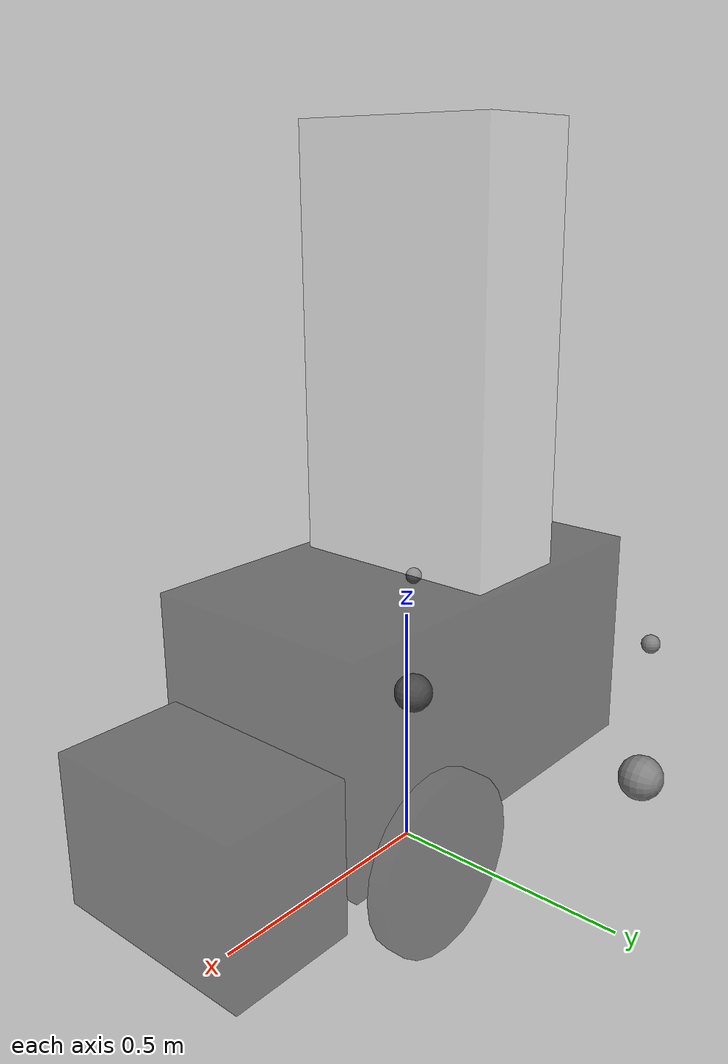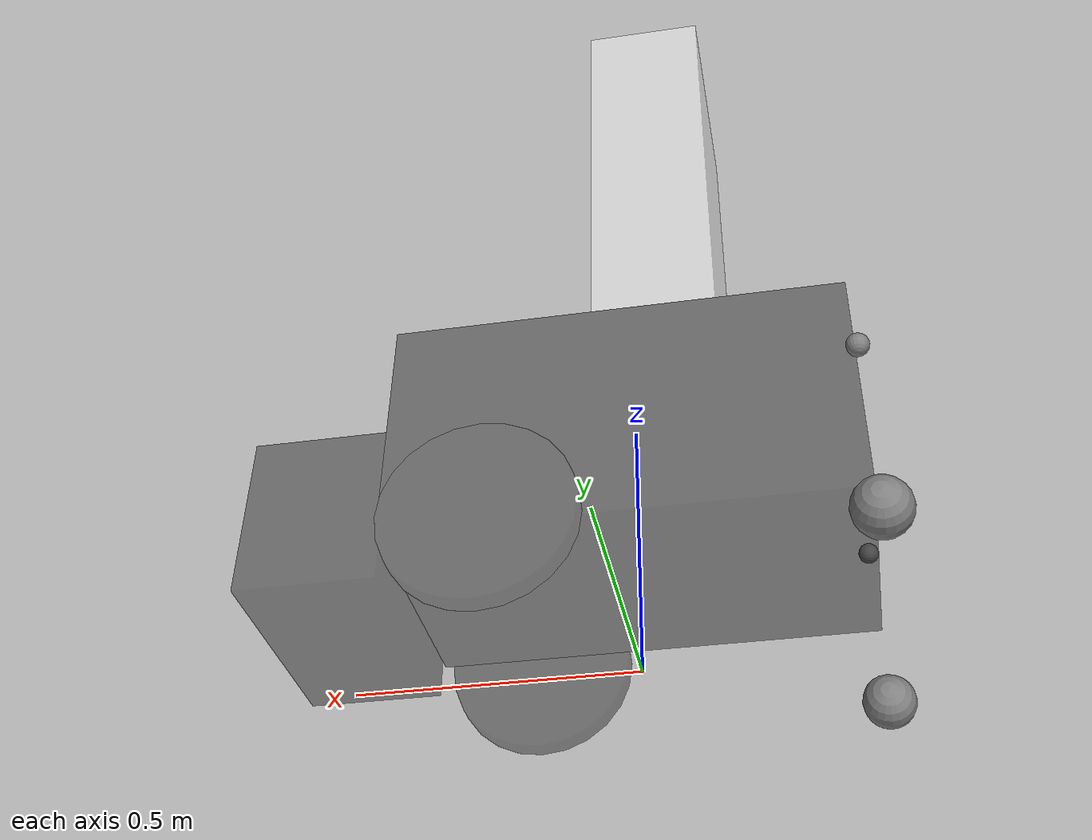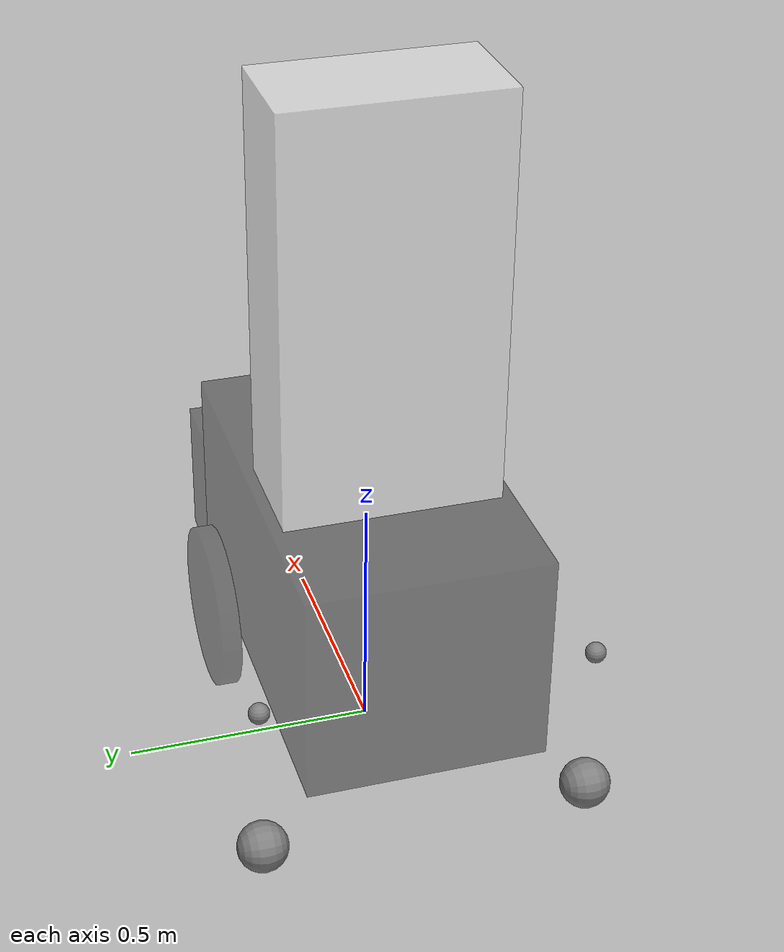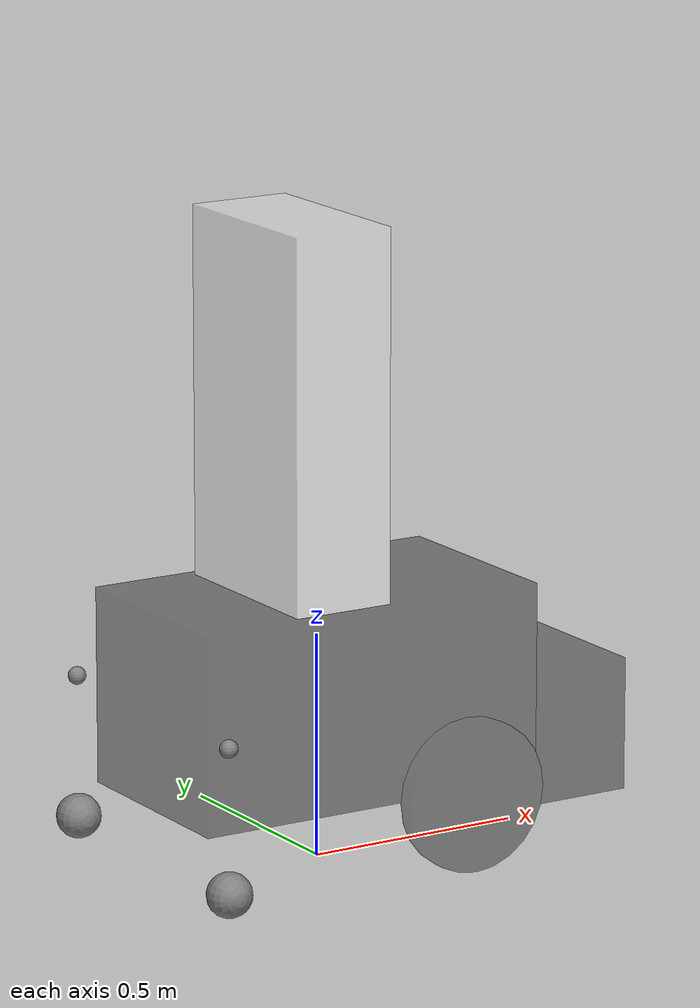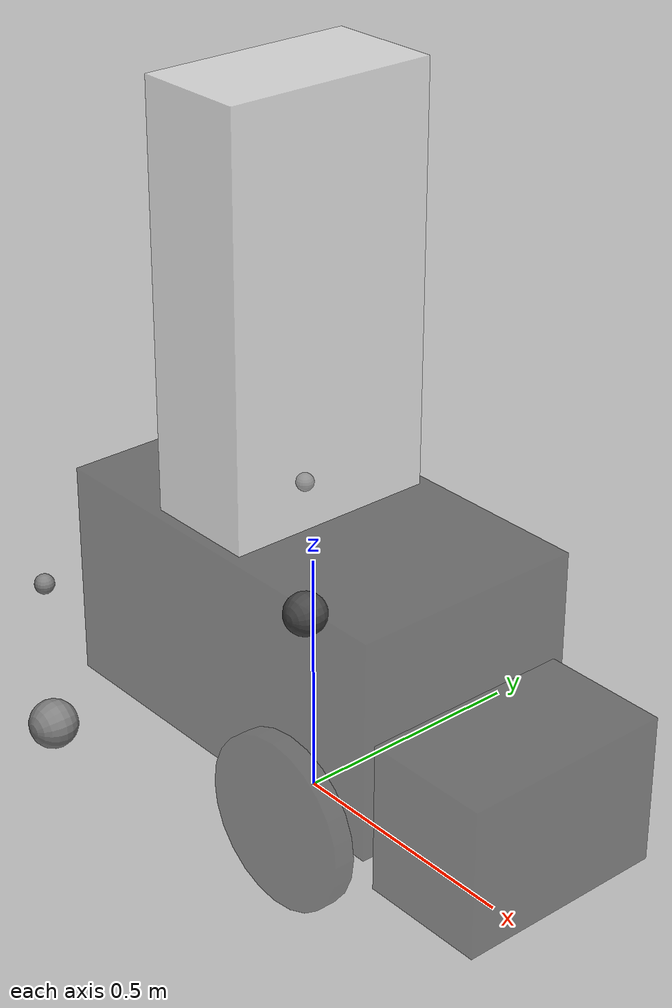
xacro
<?xml version="1.0"?>

<robot xmlns:xacro="http://www.ros.org/wiki/xacro"
    xmlns:sensor="http://playerstage.sourceforge.net/gazebo/xmlschema/#sensor"
    xmlns:controller="http://playerstage.sourceforge.net/gazebo/xmlschema/#controller"
    xmlns:interface="http://playerstage.sourceforge.net/gazebo/xmlschema/#interface"
    name="wheelchair_iaslab">

    <xacro:arg name="prefix" default="wcias_"/>

    <xacro:include filename="$(find wheelchair_iaslab_description)/urdf/wheelchair_iaslab.gazebo"/>

    <xacro:property name="M_PI" value="3.1415926535897931"/>

    <!-- Base Properties: width = y axis, length = x axis, z = height axis -->
   <!--From right wheel to left wheel-->
    <!--From front wheel to back wheel-->
  <!--From lower base to upper base of chair-->

     <xacro:property name="base_width" value="0.475" /> <!--From the centre of the right wheel to the centre of the left wheel-->
     <xacro:property name="base_length" value="0.8275"/> <!-- From the centre of small wheel to the main wheel (included the diameter)-->
     <xacro:property name="base_height" value="0.44" /> <!-- From the ground to before pillow-->
     <xacro:property name="base_mass" value="10.0" /> <!--in Kg-->

    <!-- Chair back properties -->
    <xacro:property name="chair_back_width" value="0.43" />
    <xacro:property name="chair_back_length" value="0.23" />
    <xacro:property name="chair_back_height" value="0.82" />
    <xacro:property name="chair_back_mass" value="1.0" />

    <!-- Pillow properties -->
    <xacro:property name="pillow_width" value="0.42" />
    <xacro:property name="pillow_length" value="0.485" />
    <xacro:property name="pillow_height" value="0.07" />

    <!-- Legs properties -->
    <xacro:property name="legs_width" value="0.43" />
    <xacro:property name="legs_length" value="0.25" />
    <xacro:property name="legs_height" value="0.30" /> <!--about, to be remeasured-->
    <xacro:property name="legs_mass" value="2.0" />

    <!-- Wheels Properties -->
    <!-- Front wheel properties-->
    <xacro:property name="main_wheel_length" value="0.04" />
    <xacro:property name="main_wheel_radius" value="0.17" />
    <xacro:property name="main_wheel_mass" value="2.0" />

    <!-- Rear wheel properties -->
    <xacro:property name="small_wheel_length" value="0.035" />
    <xacro:property name="small_wheel_radius" value="0.10" />
    <xacro:property name="small_wheel_mass" value="1.0" />

    <!-- Inertia matrices -->
    <!--Maybe swap w and l-->
    <xacro:macro name="box_inertia" params="w l h m" >
        <inertia ixx="${1/12*m*(l*l+h*h)}" ixy="0" ixz="0"
                 iyy="${1/12*m*(w*w+l*l)}" iyz="0"
                 izz="${1/12*m*(w*w+h*h)}" />
    </xacro:macro>

    <!--m = mass, r = radius, h = height -->
    <xacro:macro name="cylinder_inertia" params="m r h" >
        <inertia ixx="${1/12*m*(3*r*r + h*h)}" ixy="0" ixz="0"
                 iyy="${1/12*m*(3*r*r + h*h)}" iyz="0"
                 izz="${1/2*m*r*r}" />
    </xacro:macro>

    <xacro:macro name="sphere_inertia" params="m r">
    <inertia
        ixx="${2.0/5.0 * m * r * r}" ixy="0.0" ixz="0.0"
        iyy="${2.0/5.0 * m * r * r}" iyz="0.0"
        izz="${2.0/5.0 * m * r * r}" />
    </xacro:macro>

    <!-- Links and joints definitions -->

    <!-- Footprint and base -->
    <link name="$(arg prefix)base_footprint" />

    <joint name="$(arg prefix)base_footprint_joint" type="fixed">
        <parent link="$(arg prefix)base_footprint" />
        <child link="$(arg prefix)base_link" />
        <origin xyz="0.0 0.0 ${base_height/2 + main_wheel_radius}" rpy="0 0 0" />
    </joint>

    <link name="$(arg prefix)base_link">
        <inertial>
            <!--origin?-->
            <mass value="${base_mass}" />
            <xacro:box_inertia w="${base_width}" l="${base_length}" h="${base_height}" m="${base_mass}" />
        </inertial>

        <visual>
            <geometry>
                <box size="${base_length} ${base_width} ${base_height}"/>
            </geometry>
            <!--origin?-->
            <material name="black">
                <color rgba="0 0 0 0.4"/>
            </material>
        </visual>

        <collision>
            <geometry>
                <box size="${base_length} ${base_width} ${base_height}"/>
            </geometry>
            <!--origin?-->
        </collision>
    </link>

    <!-- Chair back -->
    <link name="$(arg prefix)chair_back_link" >
        <!--inertial?-->
        <visual>
            <!--origin?-->
            <geometry>
                <box size="${chair_back_length} ${chair_back_width} ${chair_back_height}" />
            </geometry>
            <material name="black">
                <color rgba="1 1 1 0.4" />
            </material>
        </visual>

        <collision>
            <!--origin?-->
            <geometry>
                <box size="${chair_back_length} ${chair_back_width} ${chair_back_height}" />
            </geometry>
        </collision>
    </link>

    <joint name="$(arg prefix)chair_back_joint" type="fixed" >
        <parent link="$(arg prefix)base_link" />
        <child link="$(arg prefix)chair_back_link" />
        <origin xyz="-${base_length/2 - 0.35} 0 ${base_height/2 + chair_back_height/2}" rpy="0 0 0" />
    </joint>

    <!-- Legs -->
    <link name="$(arg prefix)legs_link">
        <inertial>
            <!--Origin?-->
            <mass value="${legs_mass}"/>
            <xacro:box_inertia w="${legs_width}" l="${legs_length}" h="${legs_height}" m="${legs_mass}" />
        </inertial>

        <visual>
            <geometry>
                <box size="${legs_length} ${legs_width} ${legs_height}" />
            </geometry>
            <!--origin?-->
            <material name="black">
                <color rgba="0 0 0 0.4" />
            </material>
        </visual>

        <collision>
            <!--origin?-->
            <geometry>
                <box size="${legs_length} ${legs_width} ${legs_height}" />
            </geometry>
        </collision>
    </link>

    <joint name="$(arg prefix)legs_joint" type="fixed">
        <parent link="$(arg prefix)base_link" />
        <child link="$(arg prefix)legs_link" />
        <origin xyz="${base_length/2 + legs_length/2} 0 -${base_height/2 - legs_height/2 + 0.07}" rpy="0 0 0" />
    </joint>

    <!-- Front wheels -->
    <link name="$(arg prefix)left_main_wheel_link">
        <inertial>
            <origin xyz="0 0 0" rpy="${M_PI/2} 0 0" />
            <mass value="${main_wheel_mass}" />
            <xacro:cylinder_inertia m="${main_wheel_mass}" r="${main_wheel_radius}" h="${main_wheel_length}" />
        </inertial>

        <visual>
            <geometry>
                <cylinder length="${main_wheel_length}" radius="${main_wheel_radius}" />
            </geometry>
            <origin xyz="0 0 0" rpy="${M_PI/2} 0 0" />
            <material name="black">
                <color rgba="0 0 0 0.4"/>
            </material>
        </visual>

        <collision>
            <geometry>
                <cylinder length="${main_wheel_length}" radius="${main_wheel_radius}" />
            </geometry>
            <origin xyz="0 0 0" rpy="${M_PI/2} 0 0" />
            <surface>
                <friction>
                    <ode>
                    <mu>1.0</mu>
                    <mu2>1.0</mu2>
                    </ode>
                </friction>
            </surface>
        </collision>
    </link>

    <joint name="$(arg prefix)left_main_wheel_joint" type="continuous" >
        <parent link="$(arg prefix)base_link" />
        <child link="$(arg prefix)left_main_wheel_link" />
        <origin xyz="0.23  ${base_width/2 + main_wheel_length/2 + 0.01} -${base_height/2}" rpy="0 0 0" />
        <axis xyz="0 1 0" />
        <joint_properties damping="0.0" friction="0.0" />
    </joint>

    <link name="$(arg prefix)right_main_wheel_link">
        <inertial>
            <origin xyz="0 0 0" rpy="${M_PI/2} 0 0" />
            <mass value="${main_wheel_mass}" />
            <xacro:cylinder_inertia m="${main_wheel_mass}" r="${main_wheel_radius}" h="${main_wheel_length}" />
        </inertial>

        <visual>
            <geometry>
                <cylinder length="${main_wheel_length}" radius="${main_wheel_radius}" />
            </geometry>
            <origin xyz="0 0 0" rpy="${M_PI/2} 0 0" />
            <material name="black">
                <color rgba="0 0 0 0.4"/>
            </material>
        </visual>

        <collision>
            <geometry>
                <cylinder length="${main_wheel_length}" radius="${main_wheel_radius}" />
            </geometry>
            <origin xyz="0 0 0" rpy="${M_PI/2} 0 0" />
            <surface>
                <friction>
                    <ode>
                    <mu>1.0</mu>
                    <mu2>1.0</mu2>
                    </ode>
                </friction>
            </surface>
        </collision>
    </link>

    <joint name="$(arg prefix)right_main_wheel_joint" type="continuous" >
        <parent link="$(arg prefix)base_link" />
        <child link="$(arg prefix)right_main_wheel_link" />
        <origin xyz="0.23  -${base_width/2 + main_wheel_length/2 + 0.01} -${base_height/2}" rpy="0 0 0" />
        <axis xyz="0 1 0" />
        <joint_properties damping="0.0" friction="0.0" />
    </joint>

    <!--The 0.07cm is the difference between the radius of the two wheels-->

    <!-- Swivel link (the caster fork) -->
    <link name="$(arg prefix)left_caster_swivel_link">
    <inertial>
        <mass value="0.05"/>
        <origin xyz="0 0 0"/>
        <xacro:sphere_inertia m="0.05" r="0.02"/>
    </inertial>
    <visual>
        <geometry>
            <sphere radius="0.02"/>
        </geometry>
        <material name="grey">
            <color rgba="0.5 0.5 0.5 1.0"/>
        </material>
    </visual>
        <collision>
            <geometry>
                <sphere radius="0.02"/>
            </geometry>
        </collision>
    </link>

    <joint name="$(arg prefix)left_rear_caster_joint" type="continuous">
        <parent link="$(arg prefix)base_link"/>
        <child link="$(arg prefix)left_caster_swivel_link"/>
        <origin xyz="-${base_length/2} ${base_width/2 + small_wheel_length/2 +0.07} 0" rpy="0 0 0"/>
        <axis xyz="0 0 1"/>
    </joint>

    <!-- Wheel link -->
    <link name="$(arg prefix)left_rear_caster_link">
        <inertial>
            <mass value="0.05"/>
            <origin xyz="0 0 0"/>
            <xacro:sphere_inertia m="0.5" r="${small_wheel_radius/2}"/>
        </inertial>
        <visual>
            <geometry>
                <sphere radius="${small_wheel_radius/2}"/>
            </geometry>
            <material name="grey">
                <color rgba="0.5 0.5 0.5 1.0"/>
            </material>
            <origin xyz="0 0 0" rpy="${M_PI/2} 0 0"/>
        </visual>
        <collision>
            <geometry>
                <sphere radius="${small_wheel_radius/2}"/>
            </geometry>
            <origin xyz="0 0 0" rpy="${M_PI/2} 0 0"/>
        </collision>
    </link>

    <!-- Wheel spin joint -->
    <joint name="$(arg prefix)left_caster_spin_joint" type="continuous">
        <parent link="$(arg prefix)left_caster_swivel_link"/>
        <child link="$(arg prefix)left_rear_caster_link"/>
        <origin xyz="0 0 -${small_wheel_radius/2 + 0.27}" rpy="0 0 0"/>
        <axis xyz="0 1 0"/>
    </joint>

    <!-- Swivel link (the caster fork) -->
    <link name="$(arg prefix)right_caster_swivel_link">
        <inertial>
            <mass value="0.05"/>
            <origin xyz="0 0 0"/>
            <xacro:sphere_inertia m="0.05" r="0.02"/>
        </inertial>
        <visual>
            <geometry>
                <sphere radius="0.02"/>
            </geometry>
            <material name="grey">
                <color rgba="0.5 0.5 0.5 1.0"/>
            </material>
        </visual>
        <collision>
            <geometry>
                <sphere radius="0.02"/>
            </geometry>
        </collision>
    </link>

    <joint name="$(arg prefix)right_rear_caster_joint" type="continuous">
        <parent link="$(arg prefix)base_link"/>
        <child link="$(arg prefix)right_caster_swivel_link"/>
        <origin xyz="-${base_length/2} -${base_width/2 + small_wheel_length/2 +0.07} 0" rpy="0 0 0"/>
        <axis xyz="0 0 1"/>
    </joint>

    <!-- Wheel link -->
    <link name="$(arg prefix)right_rear_caster_link">
        <inertial>
            <mass value="0.05"/>
            <origin xyz="0 0 0"/>
            <xacro:sphere_inertia m="0.5" r="${small_wheel_radius/2}"/>
        </inertial>
        <visual>
            <geometry>
                <sphere radius="${small_wheel_radius/2}"/>
            </geometry>
            <material name="grey">
                <color rgba="0.5 0.5 0.5 1.0"/>
            </material>
            <origin xyz="0 0 0" rpy="${M_PI/2} 0 0"/>
        </visual>
        <collision>
            <geometry>
                <sphere radius="${small_wheel_radius/2}"/>
            </geometry>
            <origin xyz="0 0 0" rpy="${M_PI/2} 0 0"/>
        </collision>
    </link>

    <!-- Wheel spin joint -->
    <joint name="$(arg prefix)rigth_caster_spin_joint" type="continuous">
        <parent link="$(arg prefix)right_caster_swivel_link"/>
        <child link="$(arg prefix)right_rear_caster_link"/>
        <origin xyz="0 0 -${small_wheel_radius/2 + 0.27}" rpy="0 0 0"/>
        <axis xyz="0 1 0"/>
    </joint>

</robot>
